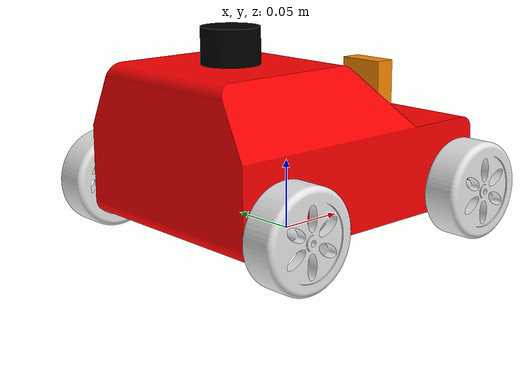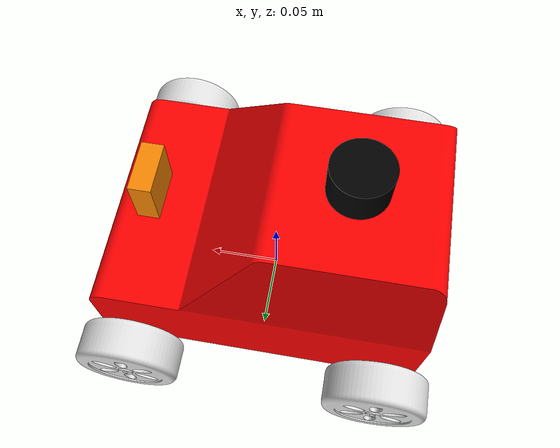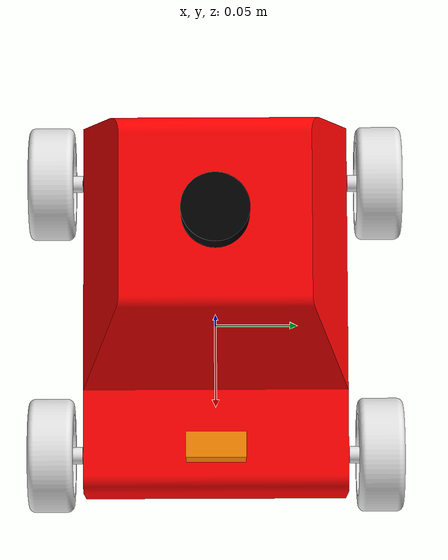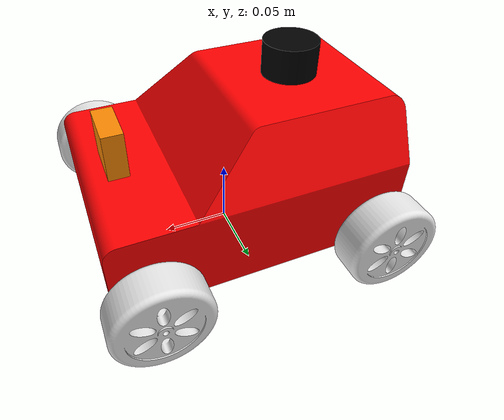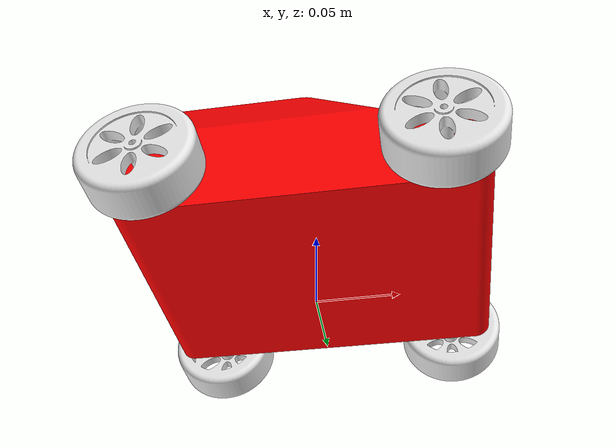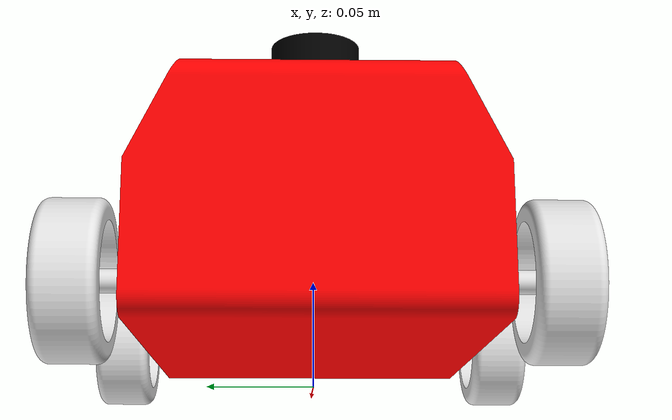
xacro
<?xml version="1.0" ?>
<!-- Generated using onshape-to-robot -->
<!-- Onshape document_id: c4aa493c9127ef72e4e641df -->
<robot name="{robot_name}" xmlns:xacro="http://www.ros.org/wiki/xacro">

    <xacro:arg name="using_sim" default="true" />

    <xacro:include filename="xacro_properties/xacro_properties.xacro" />
    <xacro:include filename="modules/chassis_and_wheels.xacro" />
    <xacro:include filename="modules/camera.xacro" />
    <xacro:include filename="modules/lidar.xacro" />

    <xacro:if value="$(arg using_sim)">
        <xacro:include filename="gazebo/gazebo_plugins.xacro" />
        <xacro:include filename="modules/imu_sim.xacro" />
    </xacro:if>

    <xacro:unless value="$(arg using_sim)">
        <xacro:include filename="modules/ros2_control.xacro" />
        <xacro:include filename="modules/imu_real.xacro" />
    </xacro:unless>

</robot>

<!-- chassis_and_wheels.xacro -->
<robot xmlns:xacro="http://www.ros.org/wiki/xacro">

  <!-- Link base footprint -->
  <link name="base_footprint"/>
  <!-- Joint base footprint -->
  <joint name="base_joint" type="fixed">
      <parent link="base_footprint" />
      <child link="base_link" />
      <origin xyz="0 0 0.019" rpy="0 0 0" />
  </joint>

<!-- Link base_link -->
  <link name="base_link">
    <inertial>
      <origin xyz="-0.00178426 -0.000464244 0.021065" rpy="0 0 0"/>
      <mass value="1.56734"/>
      <inertia ixx="0.0042106" ixy="1.29827e-06" ixz="0.000258451" iyy="0.0071422" iyz="5.95559e-06" izz="0.00967847"/>
    </inertial>
    <!-- Part base_link -->
    <visual>
      <origin xyz="0 0 0" rpy="0 -0 0"/>
      <geometry>
        <mesh filename="package://slambot_description/assets/base_link.stl"/>
      </geometry>
      <material name="base_link_material">
        <color rgba="1 0 0 1"/>
      </material>
    </visual>
    <collision>
      <origin xyz="0 0 0" rpy="0 -0 0"/>
      <geometry>
        <mesh filename="package://slambot_description/assets/base_link.stl"/>
      </geometry>
    </collision>
  </link>

  <!-- Link rear_right_wheel_link -->
  <link name="rear_right_wheel_link">
    <inertial>
      <origin xyz="-9.27276e-19 2.38145e-18 0.0198476" rpy="0 0 0"/>
      <mass value="0.0642702"/>
      <inertia ixx="2.85888e-05" ixy="-1.90555e-11" ixz="0" iyy="2.85888e-05" iyz="0" izz="4.92789e-05"/>
    </inertial>
    <!-- Part rear_right_wheel_link -->
    <visual>
      <origin xyz="0 0 0.032" rpy="-1.5708 -0 0"/>
      <geometry>
        <mesh filename="package://slambot_description/assets/wheel_link.stl"/>
      </geometry>
      <material name="wheel_link_material">
        <color rgba="0.901961 0.901961 0.901961 1"/>
      </material>
    </visual>
    <collision>
      <origin xyz="0 0 0.032" rpy="-1.5708 -0 0"/>
      <geometry>
        <mesh filename="package://slambot_description/assets/wheel_link.stl"/>
      </geometry>
    </collision>
  </link>
  <!-- Joint from base_link to rear_right_wheel_link -->
  <joint name="rear_right_wheel_joint" type="continuous">
    <origin xyz="-0.0825 -0.08 0.015" rpy="1.5708 -0 0"/>
    <parent link="base_link"/>
    <child link="rear_right_wheel_link"/>
    <axis xyz="0 0 -1"/>
    <limit effort="100" velocity="100"/>
  </joint>

  <!-- Link front_right_wheel_link -->
  <link name="front_right_wheel_link">
    <inertial>
      <origin xyz="-9.27276e-19 -2.38145e-18 -0.0198476" rpy="0 0 0"/>
      <mass value="0.0642702"/>
      <inertia ixx="2.85888e-05" ixy="1.90555e-11" ixz="0" iyy="2.85888e-05" iyz="0" izz="4.92789e-05"/>
    </inertial>
    <!-- Part front_right_wheel_link -->
    <visual>
      <origin xyz="0 0 -0.032" rpy="1.5708 -0 0"/>
      <geometry>
        <mesh filename="package://slambot_description/assets/wheel_link.stl"/>
      </geometry>
      <material name="wheel_link_2_material">
        <color rgba="0.901961 0.901961 0.901961 1"/>
      </material>
    </visual>
    <collision>
      <origin xyz="0 0 -0.032" rpy="1.5708 -0 0"/>
      <geometry>
        <mesh filename="package://slambot_description/assets/wheel_link.stl"/>
      </geometry>
    </collision>
  </link>
  <!-- Joint from base_link to front_right_wheel_link -->
  <joint name="front_right_wheel_joint" type="continuous">
    <origin xyz="0.0825 -0.08 0.015" rpy="-1.5708 -0 0"/>
    <parent link="base_link"/>
    <child link="front_right_wheel_link"/>
    <axis xyz="0 0 1"/>
    <limit effort="100" velocity="100"/>
  </joint>

  <!-- Link front_left_wheel_link -->
  <link name="front_left_wheel_link">
    <inertial>
      <origin xyz="-9.27276e-19 -2.38145e-18 -0.0198476" rpy="0 0 0"/>
      <mass value="0.0642702"/>
      <inertia ixx="2.85888e-05" ixy="1.90555e-11" ixz="0" iyy="2.85888e-05" iyz="0" izz="4.92789e-05"/>
    </inertial>
    <!-- Part front_left_wheel_link -->
    <visual>
      <origin xyz="0 0 -0.032" rpy="1.5708 -0 0"/>
      <geometry>
        <mesh filename="package://slambot_description/assets/wheel_link.stl"/>
      </geometry>
      <material name="wheel_link_3_material">
        <color rgba="0.901961 0.901961 0.901961 1"/>
      </material>
    </visual>
    <collision>
      <origin xyz="0 0 -0.032" rpy="1.5708 -0 0"/>
      <geometry>
        <mesh filename="package://slambot_description/assets/wheel_link.stl"/>
      </geometry>
    </collision>
  </link>
  <!-- Joint from base_link to front_left_wheel_link -->
  <joint name="front_left_wheel_joint" type="continuous">
    <origin xyz="0.0825 0.08 0.015" rpy="1.5708 -0 0"/>
    <parent link="base_link"/>
    <child link="front_left_wheel_link"/>
    <axis xyz="0 0 -1"/>
    <limit effort="100" velocity="100"/>
  </joint>

  <!-- Link rear_left_wheel_link -->
  <link name="rear_left_wheel_link">
    <inertial>
      <origin xyz="-9.27276e-19 2.38145e-18 0.0198476" rpy="0 0 0"/>
      <mass value="0.0642702"/>
      <inertia ixx="2.85888e-05" ixy="-1.90555e-11" ixz="0" iyy="2.85888e-05" iyz="0" izz="4.92789e-05"/>
    </inertial>
    <!-- Part rear_left_wheel_link -->
    <visual>
      <origin xyz="0 0 0.032" rpy="-1.5708 -0 0"/>
      <geometry>
        <mesh filename="package://slambot_description/assets/wheel_link.stl"/>
      </geometry>
      <material name="wheel_link_4_material">
        <color rgba="0.901961 0.901961 0.901961 1"/>
      </material>
    </visual>
    <collision>
      <origin xyz="0 0 0.032" rpy="-1.5708 -0 0"/>
      <geometry>
        <mesh filename="package://slambot_description/assets/wheel_link.stl"/>
      </geometry>
    </collision>
  </link>
  <!-- Joint from base_link to rear_left_wheel_link -->
  <joint name="rear_left_wheel_joint" type="continuous">
    <origin xyz="-0.0825 0.08 0.015" rpy="-1.5708 -0 0"/>
    <parent link="base_link"/>
    <child link="rear_left_wheel_link"/>
    <axis xyz="0 0 1"/>
    <limit effort="100" velocity="100"/>
  </joint>

</robot>

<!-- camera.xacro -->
<robot xmlns:xacro="http://www.ros.org/wiki/xacro">

  <!-- Link camera_link -->
  <link name="camera_link">
    <inertial>
      <origin xyz="5.37582e-18 -7.20266e-19 -0.0175" rpy="0 0 0"/>
      <mass value="0.0229688"/>
      <inertia ixx="4.68945e-06" ixy="0" ixz="0" iyy="2.77539e-06" iyz="0" izz="2.77539e-06"/>
    </inertial>
    <!-- Part camera_link -->
    <visual>
      <origin xyz="6.45358e-18 0 -0.0175" rpy="3.14159 -0 0"/>
      <geometry>
        <mesh filename="package://slambot_description/assets/camera_link.stl"/>
      </geometry>
      <material name="camera_link_material">
        <color rgba="0.972549 0.529412 0.00392157 1"/>
      </material>
    </visual>
    <collision>
      <origin xyz="6.45358e-18 0 -0.0175" rpy="3.14159 -0 0"/>
      <geometry>
        <mesh filename="package://slambot_description/assets/camera_link.stl"/>
      </geometry>
    </collision>
  </link>
  <!-- Joint from base_link to camera_link -->
  <joint name="camera" type="fixed">
    <origin xyz="0.083 -2.43306e-17 0.095" rpy="0 -0 0"/>
    <parent link="base_link"/>
    <child link="camera_link"/>
    <axis xyz="0 0 1"/>
    <limit effort="100" velocity="100"/>
  </joint>

  <link name="camera_optical_link">
  </link>

  <joint name="camera_optical_joint" type="fixed">
      <!-- these values have to be these values otherwise the gazebo camera
          image won't be aligned properly with the frame it is supposedly
          originating from -->
      <origin xyz="0 0 0" rpy="${-pi/2} 0 ${-pi/2}"/>
      <parent link="camera_link"/>
      <child link="camera_optical_link"/>
  </joint>

</robot>

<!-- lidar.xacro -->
<robot xmlns:xacro="http://www.ros.org/wiki/xacro">

  <!-- Link lidar_link -->
  <link name="lidar_link">
    <inertial>
      <origin xyz="-1.06386e-18 5.77779e-34 -0.0125" rpy="0 0 0"/>
      <mass value="0.041469"/>
      <inertia ixx="6.30675e-06" ixy="0" ixz="0" iyy="6.30675e-06" iyz="0" izz="8.2938e-06"/>
    </inertial>
    <!-- Part lidar_link -->
    <visual>
      <origin xyz="0 1.22465e-18 0" rpy="3.14159 -0 0"/>
      <geometry>
        <mesh filename="package://slambot_description/assets/lidar_link.stl"/>
      </geometry>
      <material name="lidar_link_material">
        <color rgba="0 0 0 1"/>
      </material>
    </visual>
    <collision>
      <origin xyz="0 1.22465e-18 0" rpy="3.14159 -0 0"/>
      <geometry>
        <mesh filename="package://slambot_description/assets/lidar_link.stl"/>
      </geometry>
    </collision>
  </link>
  <!-- Joint from base_link to lidar_link -->
  <joint name="lidar" type="fixed">
    <origin xyz="-0.050039 8.16354e-18 0.13" rpy="0 -0 0"/>  <!-- If z-axis pointing down, use this instead-->
    <parent link="base_link"/>
    <child link="lidar_link"/>
    <axis xyz="0 0 1"/>
    <limit effort="100" velocity="100"/>
  </joint>

</robot>

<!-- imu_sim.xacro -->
<robot xmlns:xacro="http://www.ros.org/wiki/xacro">

 <!-- IMU Sensor Link -->
  <link name="imu_link"/>

  <!-- Joint to connect IMU to the base link -->
  <joint name="imu_joint" type="fixed">
    <parent link="base_link"/>
    <child link="imu_link"/>
    <origin xyz="0 0 0.047" rpy="0 0 0"/>
  </joint>

</robot>
